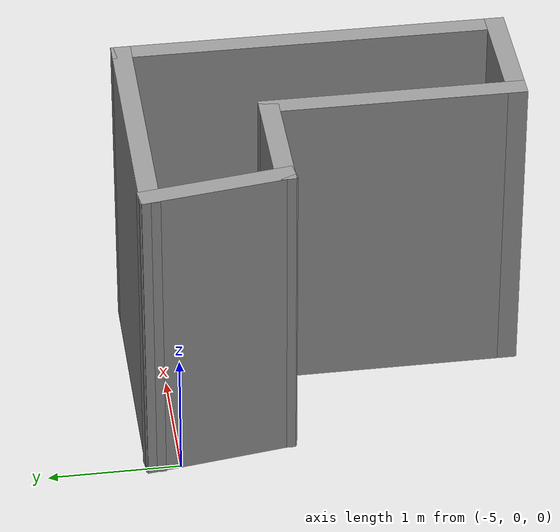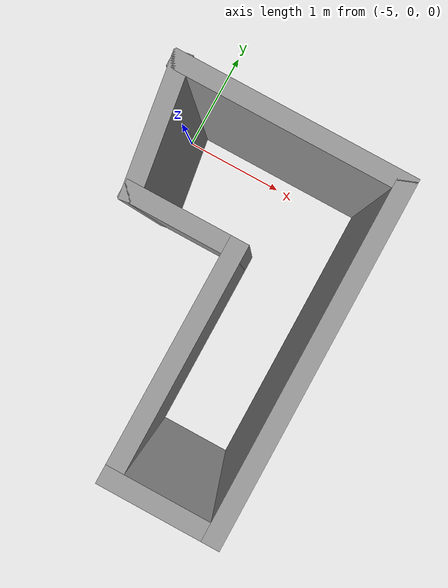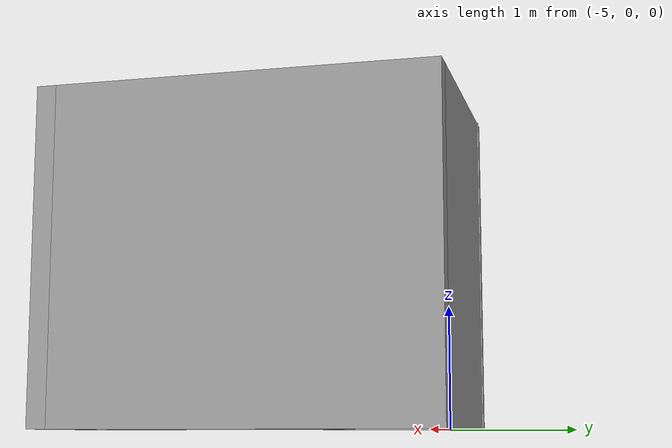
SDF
<?xml version='1.0'?>
<sdf version='1.6'>
  <model name='One'>
    <pose frame=''>-4.04362 -1.22726 0 0 -0 0</pose>
    <link name='Wall_12'>
      <collision name='Wall_12_Collision'>
        <geometry>
          <box>
            <size>2 0.15 2.5</size>
          </box>
        </geometry>
        <pose frame=''>0 0 1.25 0 -0 0</pose>
      </collision>
      <visual name='Wall_12_Visual'>
        <pose frame=''>0 0 1.25 0 -0 0</pose>
        <geometry>
          <box>
            <size>2 0.15 2.5</size>
          </box>
        </geometry>
        <material>
          <script>
            <uri>file://media/materials/scripts/gazebo.material</uri>
            <name>Gazebo/Grey</name>
          </script>
          <ambient>1 1 1 1</ambient>
        </material>
      </visual>
      <pose frame=''>0.005148 1.41985 0 0 -0 0</pose>
    </link>
    <link name='Wall_13'>
      <collision name='Wall_13_Collision'>
        <geometry>
          <box>
            <size>3 0.15 2.5</size>
          </box>
        </geometry>
        <pose frame=''>0 0 1.25 0 -0 0</pose>
      </collision>
      <visual name='Wall_13_Visual'>
        <pose frame=''>0 0 1.25 0 -0 0</pose>
        <geometry>
          <box>
            <size>3 0.15 2.5</size>
          </box>
        </geometry>
        <material>
          <script>
            <uri>file://media/materials/scripts/gazebo.material</uri>
            <name>Gazebo/Grey</name>
          </script>
          <ambient>1 1 1 1</ambient>
        </material>
      </visual>
      <pose frame=''>0.930148 -0.005148 0 0 0 -1.5708</pose>
    </link>
    <link name='Wall_14'>
      <collision name='Wall_14_Collision'>
        <geometry>
          <box>
            <size>1 0.15 2.5</size>
          </box>
        </geometry>
        <pose frame=''>0 0 1.25 0 -0 0</pose>
      </collision>
      <visual name='Wall_14_Visual'>
        <pose frame=''>0 0 1.25 0 -0 0</pose>
        <geometry>
          <box>
            <size>1 0.15 2.5</size>
          </box>
        </geometry>
        <material>
          <script>
            <uri>file://media/materials/scripts/gazebo.material</uri>
            <name>Gazebo/Grey</name>
          </script>
          <ambient>1 1 1 1</ambient>
        </material>
      </visual>
      <pose frame=''>0.505148 -1.43015 0 0 -0 3.14159</pose>
    </link>
    <link name='Wall_15'>
      <collision name='Wall_15_Collision'>
        <geometry>
          <box>
            <size>2 0.15 2.5</size>
          </box>
        </geometry>
        <pose frame=''>0 0 1.25 0 -0 0</pose>
      </collision>
      <visual name='Wall_15_Visual'>
        <pose frame=''>0 0 1.25 0 -0 0</pose>
        <geometry>
          <box>
            <size>2 0.15 2.5</size>
          </box>
        </geometry>
        <material>
          <script>
            <uri>file://media/materials/scripts/gazebo.material</uri>
            <name>Gazebo/Grey</name>
          </script>
          <ambient>1 1 1 1</ambient>
        </material>
      </visual>
      <pose frame=''>0.080148 -0.505148 0 0 -0 1.5708</pose>
    </link>
    <link name='Wall_16'>
      <collision name='Wall_16_Collision'>
        <geometry>
          <box>
            <size>1 0.15 2.5</size>
          </box>
        </geometry>
        <pose frame=''>0 0 1.25 0 -0 0</pose>
      </collision>
      <visual name='Wall_16_Visual'>
        <pose frame=''>0 0 1.25 0 -0 0</pose>
        <geometry>
          <box>
            <size>1 0.15 2.5</size>
          </box>
        </geometry>
        <material>
          <script>
            <uri>file://media/materials/scripts/gazebo.material</uri>
            <name>Gazebo/Grey</name>
          </script>
          <ambient>1 1 1 1</ambient>
        </material>
      </visual>
      <pose frame=''>-0.344852 0.419852 0 0 -0 3.14159</pose>
    </link>
    <link name='Wall_17'>
      <collision name='Wall_17_Collision'>
        <geometry>
          <box>
            <size>1.16119 0.15 2.5</size>
          </box>
        </geometry>
        <pose frame=''>0 0 1.25 0 -0 0</pose>
      </collision>
      <visual name='Wall_17_Visual'>
        <pose frame=''>0 0 1.25 0 -0 0</pose>
        <geometry>
          <box>
            <size>1.16119 0.15 2.5</size>
          </box>
        </geometry>
        <material>
          <script>
            <uri>file://media/materials/scripts/gazebo.material</uri>
            <name>Gazebo/Grey</name>
          </script>
          <ambient>1 1 1 1</ambient>
        </material>
      </visual>
      <pose frame=''>-0.844852 0.919852 0 0 -0 1.71969</pose>
    </link>
    <static>1</static>
  </model>
</sdf>
